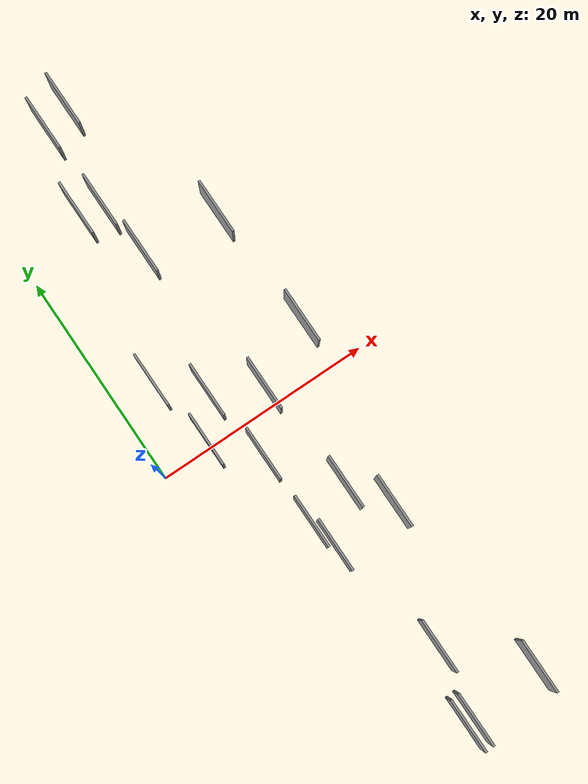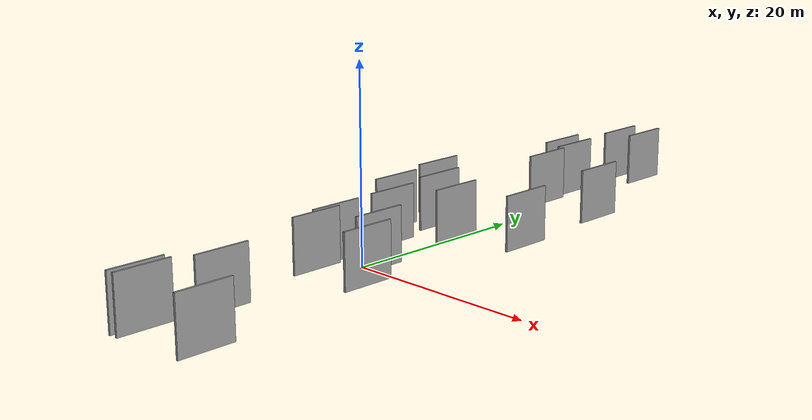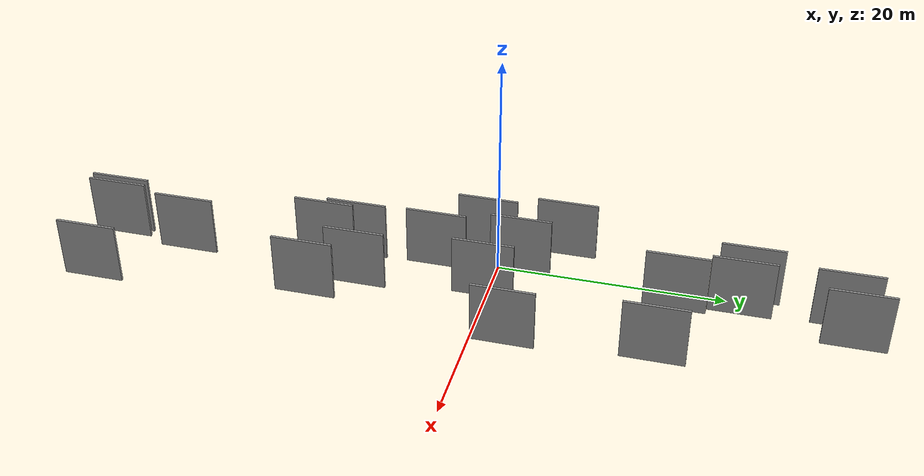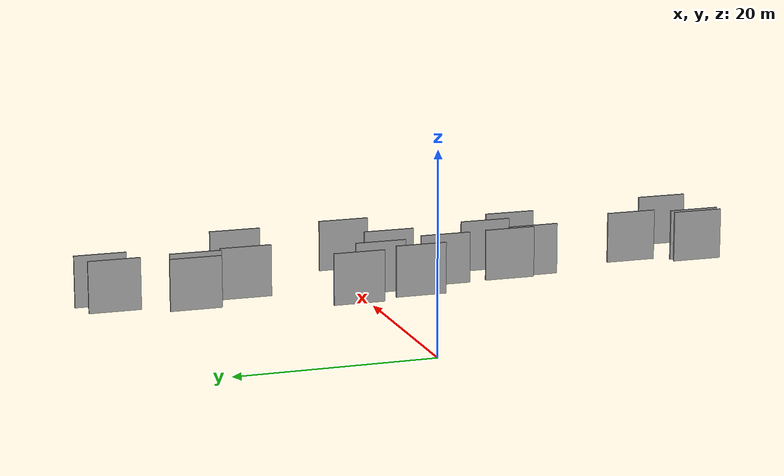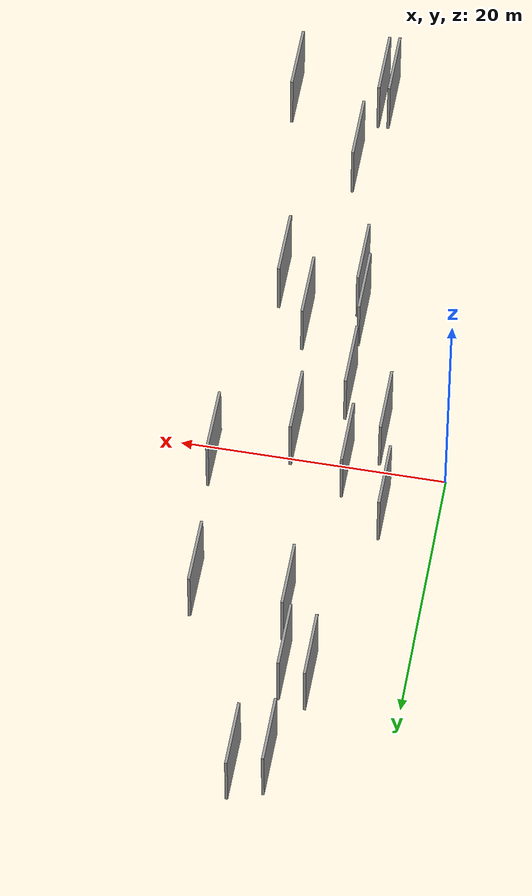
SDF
<sdf version="1.6">
 <world name="default">
  <scene>
   <sky><clouds><speed>12</speed></clouds></sky>
   <ambient>0.4 0.4 0.4 1</ambient>
   <background>0.7 0.7 0.7 1</background>
   <shadows>1</shadows>
  </scene>
  <gravity>0 0 -9.8066</gravity>
  <magnetic_field>6e-06 2.3e-05 -4.2e-05</magnetic_field>
  <physics default="0" name="default_physics" type="ode">
   <ode>
    <solver>
     <type>quick</type>
     <iters>10</iters>
     <sor>1.0</sor>
     <use_dynamic_moi_rescaling>0</use_dynamic_moi_rescaling>
    </solver>
    <constraints>
     <cfm>0</cfm>
     <erp>0.2</erp>
     <contact_max_correcting_vel>100</contact_max_correcting_vel>
     <contact_surface_layer>0.001</contact_surface_layer>
    </constraints>
   </ode>
   <max_step_size>0.004</max_step_size>
   <real_time_factor>1</real_time_factor>
   <real_time_update_rate>250</real_time_update_rate>
  </physics>
  <light name="sun" type="directional">
   <pose>0 0 10 0 0 0</pose>
   <diffuse>0.8 0.8 0.8 1</diffuse>
   <specular>0.2 0.2 0.2 1</specular>
   <attenuation>
    <range>1000</range>
    <constant>0.9</constant>
    <linear>0.01</linear>
    <quadratic>0.001</quadratic>
   </attenuation>
   <direction>-0.5 0.1 -0.9</direction>
  </light>
  <model name="grey_wall_1">
   <static>1</static>
   <pose>8.9552 16.1718 5.0 0.000000 0.000000 1.570796</pose>
   <link name="link">
    <pose>0 0 2.50 0 0 0</pose>
    <collision name="collision"><geometry><box><size>5.00 0.2 5.00</size></box></geometry></collision>
    <visual name="visual">
     <cast_shadows>0</cast_shadows>
     <geometry><box><size>5.00 0.2 5.00</size></box></geometry>
     <material>
      <script>
       <uri>model://grey_wall/materials/scripts</uri>
       <uri>model://grey_wall/materials/textures</uri>
       <name>vrc/grey_wall</name>
      </script>
     </material>
    </visual>
   </link>
  </model>
  <model name="grey_wall_2">
   <static>1</static>
   <pose>16.6825 4.1266 5.0 0.000000 0.000000 1.570796</pose>
   <link name="link">
    <pose>0 0 2.50 0 0 0</pose>
    <collision name="collision"><geometry><box><size>5.00 0.2 5.00</size></box></geometry></collision>
    <visual name="visual">
     <cast_shadows>0</cast_shadows>
     <geometry><box><size>5.00 0.2 5.00</size></box></geometry>
     <material>
      <script>
       <uri>model://grey_wall/materials/scripts</uri>
       <uri>model://grey_wall/materials/textures</uri>
       <name>vrc/grey_wall</name>
      </script>
     </material>
    </visual>
   </link>
  </model>
  <model name="grey_wall_3">
   <static>1</static>
   <pose>3.6133 6.5719 5.0 0.000000 0.000000 1.570796</pose>
   <link name="link">
    <pose>0 0 2.50 0 0 0</pose>
    <collision name="collision"><geometry><box><size>5.00 0.2 5.00</size></box></geometry></collision>
    <visual name="visual">
     <cast_shadows>0</cast_shadows>
     <geometry><box><size>5.00 0.2 5.00</size></box></geometry>
     <material>
      <script>
       <uri>model://grey_wall/materials/scripts</uri>
       <uri>model://grey_wall/materials/textures</uri>
       <name>vrc/grey_wall</name>
      </script>
     </material>
    </visual>
   </link>
  </model>
  <model name="grey_wall_4">
   <static>1</static>
   <pose>6.8973 3.3755 5.0 0.000000 0.000000 1.570796</pose>
   <link name="link">
    <pose>0 0 2.50 0 0 0</pose>
    <collision name="collision"><geometry><box><size>5.00 0.2 5.00</size></box></geometry></collision>
    <visual name="visual">
     <cast_shadows>0</cast_shadows>
     <geometry><box><size>5.00 0.2 5.00</size></box></geometry>
     <material>
      <script>
       <uri>model://grey_wall/materials/scripts</uri>
       <uri>model://grey_wall/materials/textures</uri>
       <name>vrc/grey_wall</name>
      </script>
     </material>
    </visual>
   </link>
  </model>
  <model name="grey_wall_5">
   <static>1</static>
   <pose>9.2065 -30.6236 5.0 0.000000 0.000000 1.570796</pose>
   <link name="link">
    <pose>0 0 2.50 0 0 0</pose>
    <collision name="collision"><geometry><box><size>5.00 0.2 5.00</size></box></geometry></collision>
    <visual name="visual">
     <cast_shadows>0</cast_shadows>
     <geometry><box><size>5.00 0.2 5.00</size></box></geometry>
     <material>
      <script>
       <uri>model://grey_wall/materials/scripts</uri>
       <uri>model://grey_wall/materials/textures</uri>
       <name>vrc/grey_wall</name>
      </script>
     </material>
    </visual>
   </link>
  </model>
  <model name="grey_wall_6">
   <static>1</static>
   <pose>8.3192 21.1866 5.0 0.000000 0.000000 1.570796</pose>
   <link name="link">
    <pose>0 0 2.50 0 0 0</pose>
    <collision name="collision"><geometry><box><size>5.00 0.2 5.00</size></box></geometry></collision>
    <visual name="visual">
     <cast_shadows>0</cast_shadows>
     <geometry><box><size>5.00 0.2 5.00</size></box></geometry>
     <material>
      <script>
       <uri>model://grey_wall/materials/scripts</uri>
       <uri>model://grey_wall/materials/textures</uri>
       <name>vrc/grey_wall</name>
      </script>
     </material>
    </visual>
   </link>
  </model>
  <model name="grey_wall_7">
   <static>1</static>
   <pose>15.8572 15.4159 5.0 0.000000 0.000000 1.570796</pose>
   <link name="link">
    <pose>0 0 2.50 0 0 0</pose>
    <collision name="collision"><geometry><box><size>5.00 0.2 5.00</size></box></geometry></collision>
    <visual name="visual">
     <cast_shadows>0</cast_shadows>
     <geometry><box><size>5.00 0.2 5.00</size></box></geometry>
     <material>
      <script>
       <uri>model://grey_wall/materials/scripts</uri>
       <uri>model://grey_wall/materials/textures</uri>
       <name>vrc/grey_wall</name>
      </script>
     </material>
    </visual>
   </link>
  </model>
  <model name="grey_wall_8">
   <static>1</static>
   <pose>16.5887 -29.9068 5.0 0.000000 0.000000 1.570796</pose>
   <link name="link">
    <pose>0 0 2.50 0 0 0</pose>
    <collision name="collision"><geometry><box><size>5.00 0.2 5.00</size></box></geometry></collision>
    <visual name="visual">
     <cast_shadows>0</cast_shadows>
     <geometry><box><size>5.00 0.2 5.00</size></box></geometry>
     <material>
      <script>
       <uri>model://grey_wall/materials/scripts</uri>
       <uri>model://grey_wall/materials/textures</uri>
       <name>vrc/grey_wall</name>
      </script>
     </material>
    </visual>
   </link>
  </model>
  <model name="grey_wall_9">
   <static>1</static>
   <pose>12.0498 -9.0520 5.0 0.000000 0.000000 1.570796</pose>
   <link name="link">
    <pose>0 0 2.50 0 0 0</pose>
    <collision name="collision"><geometry><box><size>5.00 0.2 5.00</size></box></geometry></collision>
    <visual name="visual">
     <cast_shadows>0</cast_shadows>
     <geometry><box><size>5.00 0.2 5.00</size></box></geometry>
     <material>
      <script>
       <uri>model://grey_wall/materials/scripts</uri>
       <uri>model://grey_wall/materials/textures</uri>
       <name>vrc/grey_wall</name>
      </script>
     </material>
    </visual>
   </link>
  </model>
  <model name="grey_wall_10">
   <static>1</static>
   <pose>10.8728 -24.1320 5.0 0.000000 0.000000 1.570796</pose>
   <link name="link">
    <pose>0 0 2.50 0 0 0</pose>
    <collision name="collision"><geometry><box><size>5.00 0.2 5.00</size></box></geometry></collision>
    <visual name="visual">
     <cast_shadows>0</cast_shadows>
     <geometry><box><size>5.00 0.2 5.00</size></box></geometry>
     <material>
      <script>
       <uri>model://grey_wall/materials/scripts</uri>
       <uri>model://grey_wall/materials/textures</uri>
       <name>vrc/grey_wall</name>
      </script>
     </material>
    </visual>
   </link>
  </model>
  <model name="grey_wall_11">
   <static>1</static>
   <pose>8.5150 -12.7806 5.0 0.000000 0.000000 1.570796</pose>
   <link name="link">
    <pose>0 0 2.50 0 0 0</pose>
    <collision name="collision"><geometry><box><size>5.00 0.2 5.00</size></box></geometry></collision>
    <visual name="visual">
     <cast_shadows>0</cast_shadows>
     <geometry><box><size>5.00 0.2 5.00</size></box></geometry>
     <material>
      <script>
       <uri>model://grey_wall/materials/scripts</uri>
       <uri>model://grey_wall/materials/textures</uri>
       <name>vrc/grey_wall</name>
      </script>
     </material>
    </visual>
   </link>
  </model>
  <model name="grey_wall_12">
   <static>1</static>
   <pose>7.9907 -10.1568 5.0 0.000000 0.000000 1.570796</pose>
   <link name="link">
    <pose>0 0 2.50 0 0 0</pose>
    <collision name="collision"><geometry><box><size>5.00 0.2 5.00</size></box></geometry></collision>
    <visual name="visual">
     <cast_shadows>0</cast_shadows>
     <geometry><box><size>5.00 0.2 5.00</size></box></geometry>
     <material>
      <script>
       <uri>model://grey_wall/materials/scripts</uri>
       <uri>model://grey_wall/materials/textures</uri>
       <name>vrc/grey_wall</name>
      </script>
     </material>
    </visual>
   </link>
  </model>
  <model name="grey_wall_13">
   <static>1</static>
   <pose>4.6151 0.0968 5.0 0.000000 0.000000 1.570796</pose>
   <link name="link">
    <pose>0 0 2.50 0 0 0</pose>
    <collision name="collision"><geometry><box><size>5.00 0.2 5.00</size></box></geometry></collision>
    <visual name="visual">
     <cast_shadows>0</cast_shadows>
     <geometry><box><size>5.00 0.2 5.00</size></box></geometry>
     <material>
      <script>
       <uri>model://grey_wall/materials/scripts</uri>
       <uri>model://grey_wall/materials/textures</uri>
       <name>vrc/grey_wall</name>
      </script>
     </material>
    </visual>
   </link>
  </model>
  <model name="grey_wall_14">
   <static>1</static>
   <pose>14.4368 -12.5194 5.0 0.000000 0.000000 1.570796</pose>
   <link name="link">
    <pose>0 0 2.50 0 0 0</pose>
    <collision name="collision"><geometry><box><size>5.00 0.2 5.00</size></box></geometry></collision>
    <visual name="visual">
     <cast_shadows>0</cast_shadows>
     <geometry><box><size>5.00 0.2 5.00</size></box></geometry>
     <material>
      <script>
       <uri>model://grey_wall/materials/scripts</uri>
       <uri>model://grey_wall/materials/textures</uri>
       <name>vrc/grey_wall</name>
      </script>
     </material>
    </visual>
   </link>
  </model>
  <model name="grey_wall_15">
   <static>1</static>
   <pose>9.9795 -30.5581 5.0 0.000000 0.000000 1.570796</pose>
   <link name="link">
    <pose>0 0 2.50 0 0 0</pose>
    <collision name="collision"><geometry><box><size>5.00 0.2 5.00</size></box></geometry></collision>
    <visual name="visual">
     <cast_shadows>0</cast_shadows>
     <geometry><box><size>5.00 0.2 5.00</size></box></geometry>
     <material>
      <script>
       <uri>model://grey_wall/materials/scripts</uri>
       <uri>model://grey_wall/materials/textures</uri>
       <name>vrc/grey_wall</name>
      </script>
     </material>
    </visual>
   </link>
  </model>
  <model name="grey_wall_16">
   <static>1</static>
   <pose>11.0572 1.2371 5.0 0.000000 0.000000 1.570796</pose>
   <link name="link">
    <pose>0 0 2.50 0 0 0</pose>
    <collision name="collision"><geometry><box><size>5.00 0.2 5.00</size></box></geometry></collision>
    <visual name="visual">
     <cast_shadows>0</cast_shadows>
     <geometry><box><size>5.00 0.2 5.00</size></box></geometry>
     <material>
      <script>
       <uri>model://grey_wall/materials/scripts</uri>
       <uri>model://grey_wall/materials/textures</uri>
       <name>vrc/grey_wall</name>
      </script>
     </material>
    </visual>
   </link>
  </model>
  <model name="grey_wall_17">
   <static>1</static>
   <pose>7.9739 29.0679 5.0 0.000000 0.000000 1.570796</pose>
   <link name="link">
    <pose>0 0 2.50 0 0 0</pose>
    <collision name="collision"><geometry><box><size>5.00 0.2 5.00</size></box></geometry></collision>
    <visual name="visual">
     <cast_shadows>0</cast_shadows>
     <geometry><box><size>5.00 0.2 5.00</size></box></geometry>
     <material>
      <script>
       <uri>model://grey_wall/materials/scripts</uri>
       <uri>model://grey_wall/materials/textures</uri>
       <name>vrc/grey_wall</name>
      </script>
     </material>
    </visual>
   </link>
  </model>
  <model name="grey_wall_18">
   <static>1</static>
   <pose>7.8162 -3.4495 5.0 0.000000 0.000000 1.570796</pose>
   <link name="link">
    <pose>0 0 2.50 0 0 0</pose>
    <collision name="collision"><geometry><box><size>5.00 0.2 5.00</size></box></geometry></collision>
    <visual name="visual">
     <cast_shadows>0</cast_shadows>
     <geometry><box><size>5.00 0.2 5.00</size></box></geometry>
     <material>
      <script>
       <uri>model://grey_wall/materials/scripts</uri>
       <uri>model://grey_wall/materials/textures</uri>
       <name>vrc/grey_wall</name>
      </script>
     </material>
    </visual>
   </link>
  </model>
  <model name="grey_wall_19">
   <static>1</static>
   <pose>6.3332 21.6930 5.0 0.000000 0.000000 1.570796</pose>
   <link name="link">
    <pose>0 0 2.50 0 0 0</pose>
    <collision name="collision"><geometry><box><size>5.00 0.2 5.00</size></box></geometry></collision>
    <visual name="visual">
     <cast_shadows>0</cast_shadows>
     <geometry><box><size>5.00 0.2 5.00</size></box></geometry>
     <material>
      <script>
       <uri>model://grey_wall/materials/scripts</uri>
       <uri>model://grey_wall/materials/textures</uri>
       <name>vrc/grey_wall</name>
      </script>
     </material>
    </visual>
   </link>
  </model>
  <model name="grey_wall_20">
   <static>1</static>
   <pose>10.4356 29.8707 5.0 0.000000 0.000000 1.570796</pose>
   <link name="link">
    <pose>0 0 2.50 0 0 0</pose>
    <collision name="collision"><geometry><box><size>5.00 0.2 5.00</size></box></geometry></collision>
    <visual name="visual">
     <cast_shadows>0</cast_shadows>
     <geometry><box><size>5.00 0.2 5.00</size></box></geometry>
     <material>
      <script>
       <uri>model://grey_wall/materials/scripts</uri>
       <uri>model://grey_wall/materials/textures</uri>
       <name>vrc/grey_wall</name>
      </script>
     </material>
    </visual>
   </link>
  </model>
 </world>
</sdf>
